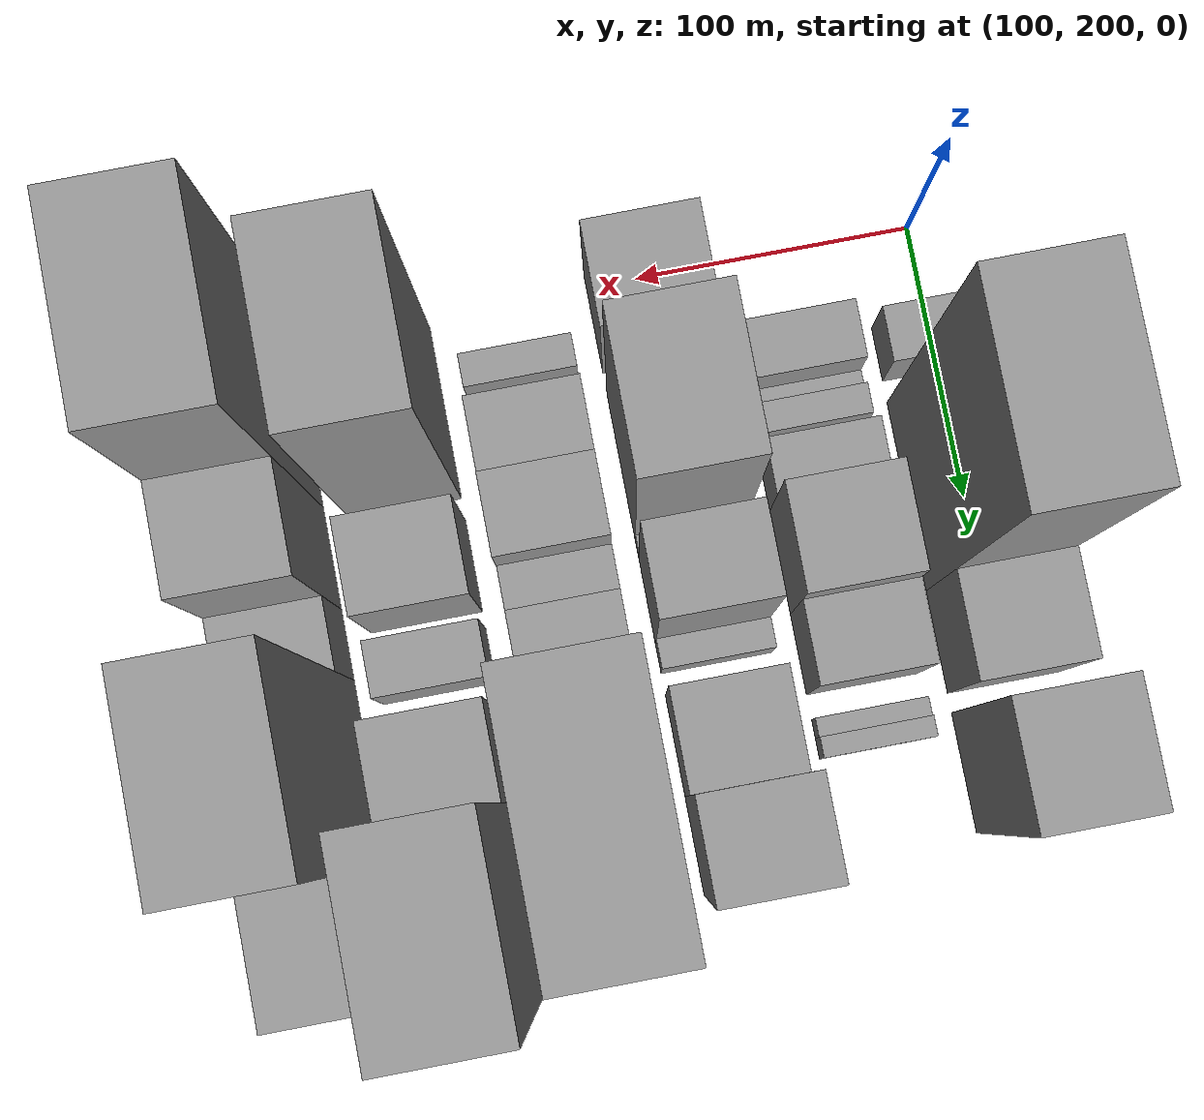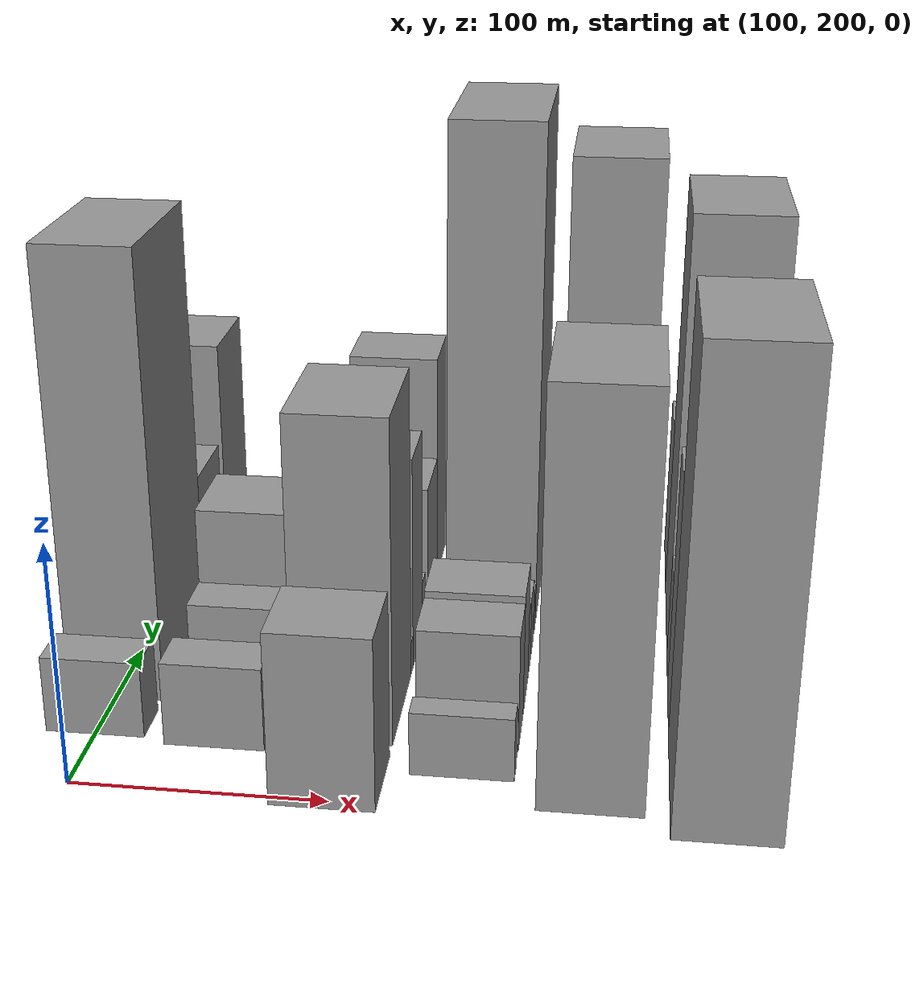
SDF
<sdf version="1.6">
 <world name="default">
  <model name="building_32">
   <static>1</static>
   <pose>100.0000 243.5929 0 0.000000 0.000000 0.000000</pose>
   <link name="link">
    <pose>0 0 16.50 0 0 0</pose>
    <collision name="collision"><geometry><box><size>40.0000 19.6932 33.0000</size></box></geometry></collision>
    <visual name="visual">
     <cast_shadows>0</cast_shadows>
     <geometry><box><size>40.0000 19.6932 33.0000</size></box></geometry>
     <material>
      <script>
       <uri>model://grey_wall/materials/scripts</uri>
       <uri>model://grey_wall/materials/textures</uri>
       <name>vrc/grey_wall</name>
      </script>
     </material>
    </visual>
   </link>
  </model>
  <model name="building_33">
   <static>1</static>
   <pose>100.0000 295.9719 0 0.000000 0.000000 0.000000</pose>
   <link name="link">
    <pose>0 0 96.00 0 0 0</pose>
    <collision name="collision"><geometry><box><size>40.0000 69.0647 192.0000</size></box></geometry></collision>
    <visual name="visual">
     <cast_shadows>0</cast_shadows>
     <geometry><box><size>40.0000 69.0647 192.0000</size></box></geometry>
     <material>
      <script>
       <uri>model://grey_wall/materials/scripts</uri>
       <uri>model://grey_wall/materials/textures</uri>
       <name>vrc/grey_wall</name>
      </script>
     </material>
    </visual>
   </link>
  </model>
  <model name="building_34">
   <static>1</static>
   <pose>100.0000 349.0040 0 0.000000 0.000000 0.000000</pose>
   <link name="link">
    <pose>0 0 34.50 0 0 0</pose>
    <collision name="collision"><geometry><box><size>40.0000 36.9994 69.0000</size></box></geometry></collision>
    <visual name="visual">
     <cast_shadows>0</cast_shadows>
     <geometry><box><size>40.0000 36.9994 69.0000</size></box></geometry>
     <material>
      <script>
       <uri>model://grey_wall/materials/scripts</uri>
       <uri>model://grey_wall/materials/textures</uri>
       <name>vrc/grey_wall</name>
      </script>
     </material>
    </visual>
   </link>
  </model>
  <model name="building_35">
   <static>1</static>
   <pose>100.0000 395.9646 0 0.000000 0.000000 0.000000</pose>
   <link name="link">
    <pose>0 0 57.00 0 0 0</pose>
    <collision name="collision"><geometry><box><size>40.0000 42.9218 114.0000</size></box></geometry></collision>
    <visual name="visual">
     <cast_shadows>0</cast_shadows>
     <geometry><box><size>40.0000 42.9218 114.0000</size></box></geometry>
     <material>
      <script>
       <uri>model://grey_wall/materials/scripts</uri>
       <uri>model://grey_wall/materials/textures</uri>
       <name>vrc/grey_wall</name>
      </script>
     </material>
    </visual>
   </link>
  </model>
  <model name="building_76">
   <static>1</static>
   <pose>149.0000 240.3497 0 0.000000 0.000000 0.000000</pose>
   <link name="link">
    <pose>0 0 18.00 0 0 0</pose>
    <collision name="collision"><geometry><box><size>40.0000 20.6849 36.0000</size></box></geometry></collision>
    <visual name="visual">
     <cast_shadows>0</cast_shadows>
     <geometry><box><size>40.0000 20.6849 36.0000</size></box></geometry>
     <material>
      <script>
       <uri>model://grey_wall/materials/scripts</uri>
       <uri>model://grey_wall/materials/textures</uri>
       <name>vrc/grey_wall</name>
      </script>
     </material>
    </visual>
   </link>
  </model>
  <model name="building_77">
   <static>1</static>
   <pose>149.0000 253.8900 0 0.000000 0.000000 0.000000</pose>
   <link name="link">
    <pose>0 0 7.50 0 0 0</pose>
    <collision name="collision"><geometry><box><size>40.0000 6.3957 15.0000</size></box></geometry></collision>
    <visual name="visual">
     <cast_shadows>0</cast_shadows>
     <geometry><box><size>40.0000 6.3957 15.0000</size></box></geometry>
     <material>
      <script>
       <uri>model://grey_wall/materials/scripts</uri>
       <uri>model://grey_wall/materials/textures</uri>
       <name>vrc/grey_wall</name>
      </script>
     </material>
    </visual>
   </link>
  </model>
  <model name="building_78">
   <static>1</static>
   <pose>149.0000 262.4991 0 0.000000 0.000000 0.000000</pose>
   <link name="link">
    <pose>0 0 12.00 0 0 0</pose>
    <collision name="collision"><geometry><box><size>40.0000 10.8225 24.0000</size></box></geometry></collision>
    <visual name="visual">
     <cast_shadows>0</cast_shadows>
     <geometry><box><size>40.0000 10.8225 24.0000</size></box></geometry>
     <material>
      <script>
       <uri>model://grey_wall/materials/scripts</uri>
       <uri>model://grey_wall/materials/textures</uri>
       <name>vrc/grey_wall</name>
      </script>
     </material>
    </visual>
   </link>
  </model>
  <model name="building_79">
   <static>1</static>
   <pose>149.0000 282.0099 0 0.000000 0.000000 0.000000</pose>
   <link name="link">
    <pose>0 0 19.50 0 0 0</pose>
    <collision name="collision"><geometry><box><size>40.0000 20.1993 39.0000</size></box></geometry></collision>
    <visual name="visual">
     <cast_shadows>0</cast_shadows>
     <geometry><box><size>40.0000 20.1993 39.0000</size></box></geometry>
     <material>
      <script>
       <uri>model://grey_wall/materials/scripts</uri>
       <uri>model://grey_wall/materials/textures</uri>
       <name>vrc/grey_wall</name>
      </script>
     </material>
    </visual>
   </link>
  </model>
  <model name="building_80">
   <static>1</static>
   <pose>149.0000 310.8652 0 0.000000 0.000000 0.000000</pose>
   <link name="link">
    <pose>0 0 36.00 0 0 0</pose>
    <collision name="collision"><geometry><box><size>40.0000 37.5112 72.0000</size></box></geometry></collision>
    <visual name="visual">
     <cast_shadows>0</cast_shadows>
     <geometry><box><size>40.0000 37.5112 72.0000</size></box></geometry>
     <material>
      <script>
       <uri>model://grey_wall/materials/scripts</uri>
       <uri>model://grey_wall/materials/textures</uri>
       <name>vrc/grey_wall</name>
      </script>
     </material>
    </visual>
   </link>
  </model>
  <model name="building_81">
   <static>1</static>
   <pose>149.0000 344.1254 0 0.000000 0.000000 0.000000</pose>
   <link name="link">
    <pose>0 0 27.00 0 0 0</pose>
    <collision name="collision"><geometry><box><size>40.0000 29.0091 54.0000</size></box></geometry></collision>
    <visual name="visual">
     <cast_shadows>0</cast_shadows>
     <geometry><box><size>40.0000 29.0091 54.0000</size></box></geometry>
     <material>
      <script>
       <uri>model://grey_wall/materials/scripts</uri>
       <uri>model://grey_wall/materials/textures</uri>
       <name>vrc/grey_wall</name>
      </script>
     </material>
    </visual>
   </link>
  </model>
  <model name="building_82">
   <static>1</static>
   <pose>149.0000 371.0020 0 0.000000 0.000000 0.000000</pose>
   <link name="link">
    <pose>0 0 7.50 0 0 0</pose>
    <collision name="collision"><geometry><box><size>40.0000 6.7441 15.0000</size></box></geometry></collision>
    <visual name="visual">
     <cast_shadows>0</cast_shadows>
     <geometry><box><size>40.0000 6.7441 15.0000</size></box></geometry>
     <material>
      <script>
       <uri>model://grey_wall/materials/scripts</uri>
       <uri>model://grey_wall/materials/textures</uri>
       <name>vrc/grey_wall</name>
      </script>
     </material>
    </visual>
   </link>
  </model>
  <model name="building_83">
   <static>1</static>
   <pose>149.0000 378.0578 0 0.000000 0.000000 0.000000</pose>
   <link name="link">
    <pose>0 0 9.00 0 0 0</pose>
    <collision name="collision"><geometry><box><size>40.0000 7.3676 18.0000</size></box></geometry></collision>
    <visual name="visual">
     <cast_shadows>0</cast_shadows>
     <geometry><box><size>40.0000 7.3676 18.0000</size></box></geometry>
     <material>
      <script>
       <uri>model://grey_wall/materials/scripts</uri>
       <uri>model://grey_wall/materials/textures</uri>
       <name>vrc/grey_wall</name>
      </script>
     </material>
    </visual>
   </link>
  </model>
  <model name="building_125">
   <static>1</static>
   <pose>198.0000 213.5311 0 0.000000 0.000000 0.000000</pose>
   <link name="link">
    <pose>0 0 36.00 0 0 0</pose>
    <collision name="collision"><geometry><box><size>40.0000 36.0178 72.0000</size></box></geometry></collision>
    <visual name="visual">
     <cast_shadows>0</cast_shadows>
     <geometry><box><size>40.0000 36.0178 72.0000</size></box></geometry>
     <material>
      <script>
       <uri>model://grey_wall/materials/scripts</uri>
       <uri>model://grey_wall/materials/textures</uri>
       <name>vrc/grey_wall</name>
      </script>
     </material>
    </visual>
   </link>
  </model>
  <model name="building_126">
   <static>1</static>
   <pose>198.0000 266.4138 0 0.000000 0.000000 0.000000</pose>
   <link name="link">
    <pose>0 0 69.00 0 0 0</pose>
    <collision name="collision"><geometry><box><size>40.0000 53.7476 138.0000</size></box></geometry></collision>
    <visual name="visual">
     <cast_shadows>0</cast_shadows>
     <geometry><box><size>40.0000 53.7476 138.0000</size></box></geometry>
     <material>
      <script>
       <uri>model://grey_wall/materials/scripts</uri>
       <uri>model://grey_wall/materials/textures</uri>
       <name>vrc/grey_wall</name>
      </script>
     </material>
    </visual>
   </link>
  </model>
  <model name="building_127">
   <static>1</static>
   <pose>198.0000 296.4613 0 0.000000 0.000000 0.000000</pose>
   <link name="link">
    <pose>0 0 7.50 0 0 0</pose>
    <collision name="collision"><geometry><box><size>40.0000 6.3474 15.0000</size></box></geometry></collision>
    <visual name="visual">
     <cast_shadows>0</cast_shadows>
     <geometry><box><size>40.0000 6.3474 15.0000</size></box></geometry>
     <material>
      <script>
       <uri>model://grey_wall/materials/scripts</uri>
       <uri>model://grey_wall/materials/textures</uri>
       <name>vrc/grey_wall</name>
      </script>
     </material>
    </visual>
   </link>
  </model>
  <model name="building_128">
   <static>1</static>
   <pose>198.0000 315.2924 0 0.000000 0.000000 0.000000</pose>
   <link name="link">
    <pose>0 0 48.00 0 0 0</pose>
    <collision name="collision"><geometry><box><size>40.0000 31.3148 96.0000</size></box></geometry></collision>
    <visual name="visual">
     <cast_shadows>0</cast_shadows>
     <geometry><box><size>40.0000 31.3148 96.0000</size></box></geometry>
     <material>
      <script>
       <uri>model://grey_wall/materials/scripts</uri>
       <uri>model://grey_wall/materials/textures</uri>
       <name>vrc/grey_wall</name>
      </script>
     </material>
    </visual>
   </link>
  </model>
  <model name="building_129">
   <static>1</static>
   <pose>198.0000 336.2710 0 0.000000 0.000000 0.000000</pose>
   <link name="link">
    <pose>0 0 12.00 0 0 0</pose>
    <collision name="collision"><geometry><box><size>40.0000 10.6424 24.0000</size></box></geometry></collision>
    <visual name="visual">
     <cast_shadows>0</cast_shadows>
     <geometry><box><size>40.0000 10.6424 24.0000</size></box></geometry>
     <material>
      <script>
       <uri>model://grey_wall/materials/scripts</uri>
       <uri>model://grey_wall/materials/textures</uri>
       <name>vrc/grey_wall</name>
      </script>
     </material>
    </visual>
   </link>
  </model>
  <model name="building_130">
   <static>1</static>
   <pose>198.0000 367.5538 0 0.000000 0.000000 0.000000</pose>
   <link name="link">
    <pose>0 0 30.00 0 0 0</pose>
    <collision name="collision"><geometry><box><size>40.0000 35.9233 60.0000</size></box></geometry></collision>
    <visual name="visual">
     <cast_shadows>0</cast_shadows>
     <geometry><box><size>40.0000 35.9233 60.0000</size></box></geometry>
     <material>
      <script>
       <uri>model://grey_wall/materials/scripts</uri>
       <uri>model://grey_wall/materials/textures</uri>
       <name>vrc/grey_wall</name>
      </script>
     </material>
    </visual>
   </link>
  </model>
  <model name="building_131">
   <static>1</static>
   <pose>198.0000 403.0230 0 0.000000 0.000000 0.000000</pose>
   <link name="link">
    <pose>0 0 54.00 0 0 0</pose>
    <collision name="collision"><geometry><box><size>40.0000 35.0149 108.0000</size></box></geometry></collision>
    <visual name="visual">
     <cast_shadows>0</cast_shadows>
     <geometry><box><size>40.0000 35.0149 108.0000</size></box></geometry>
     <material>
      <script>
       <uri>model://grey_wall/materials/scripts</uri>
       <uri>model://grey_wall/materials/textures</uri>
       <name>vrc/grey_wall</name>
      </script>
     </material>
    </visual>
   </link>
  </model>
  <model name="building_170">
   <static>1</static>
   <pose>247.0000 227.0635 0 0.000000 0.000000 0.000000</pose>
   <link name="link">
    <pose>0 0 13.50 0 0 0</pose>
    <collision name="collision"><geometry><box><size>40.0000 11.9064 27.0000</size></box></geometry></collision>
    <visual name="visual">
     <cast_shadows>0</cast_shadows>
     <geometry><box><size>40.0000 11.9064 27.0000</size></box></geometry>
     <material>
      <script>
       <uri>model://grey_wall/materials/scripts</uri>
       <uri>model://grey_wall/materials/textures</uri>
       <name>vrc/grey_wall</name>
      </script>
     </material>
    </visual>
   </link>
  </model>
  <model name="building_171">
   <static>1</static>
   <pose>247.0000 254.2678 0 0.000000 0.000000 0.000000</pose>
   <link name="link">
    <pose>0 0 25.50 0 0 0</pose>
    <collision name="collision"><geometry><box><size>40.0000 26.5023 51.0000</size></box></geometry></collision>
    <visual name="visual">
     <cast_shadows>0</cast_shadows>
     <geometry><box><size>40.0000 26.5023 51.0000</size></box></geometry>
     <material>
      <script>
       <uri>model://grey_wall/materials/scripts</uri>
       <uri>model://grey_wall/materials/textures</uri>
       <name>vrc/grey_wall</name>
      </script>
     </material>
    </visual>
   </link>
  </model>
  <model name="building_172">
   <static>1</static>
   <pose>247.0000 282.0640 0 0.000000 0.000000 0.000000</pose>
   <link name="link">
    <pose>0 0 27.00 0 0 0</pose>
    <collision name="collision"><geometry><box><size>40.0000 29.0901 54.0000</size></box></geometry></collision>
    <visual name="visual">
     <cast_shadows>0</cast_shadows>
     <geometry><box><size>40.0000 29.0901 54.0000</size></box></geometry>
     <material>
      <script>
       <uri>model://grey_wall/materials/scripts</uri>
       <uri>model://grey_wall/materials/textures</uri>
       <name>vrc/grey_wall</name>
      </script>
     </material>
    </visual>
   </link>
  </model>
  <model name="building_173">
   <static>1</static>
   <pose>247.0000 304.3781 0 0.000000 0.000000 0.000000</pose>
   <link name="link">
    <pose>0 0 15.00 0 0 0</pose>
    <collision name="collision"><geometry><box><size>40.0000 15.5381 30.0000</size></box></geometry></collision>
    <visual name="visual">
     <cast_shadows>0</cast_shadows>
     <geometry><box><size>40.0000 15.5381 30.0000</size></box></geometry>
     <material>
      <script>
       <uri>model://grey_wall/materials/scripts</uri>
       <uri>model://grey_wall/materials/textures</uri>
       <name>vrc/grey_wall</name>
      </script>
     </material>
    </visual>
   </link>
  </model>
  <model name="building_174">
   <static>1</static>
   <pose>247.0000 320.2747 0 0.000000 0.000000 0.000000</pose>
   <link name="link">
    <pose>0 0 15.00 0 0 0</pose>
    <collision name="collision"><geometry><box><size>40.0000 16.2552 30.0000</size></box></geometry></collision>
    <visual name="visual">
     <cast_shadows>0</cast_shadows>
     <geometry><box><size>40.0000 16.2552 30.0000</size></box></geometry>
     <material>
      <script>
       <uri>model://grey_wall/materials/scripts</uri>
       <uri>model://grey_wall/materials/textures</uri>
       <name>vrc/grey_wall</name>
      </script>
     </material>
    </visual>
   </link>
  </model>
  <model name="building_175">
   <static>1</static>
   <pose>247.0000 339.2530 0 0.000000 0.000000 0.000000</pose>
   <link name="link">
    <pose>0 0 10.50 0 0 0</pose>
    <collision name="collision"><geometry><box><size>40.0000 9.7012 21.0000</size></box></geometry></collision>
    <visual name="visual">
     <cast_shadows>0</cast_shadows>
     <geometry><box><size>40.0000 9.7012 21.0000</size></box></geometry>
     <material>
      <script>
       <uri>model://grey_wall/materials/scripts</uri>
       <uri>model://grey_wall/materials/textures</uri>
       <name>vrc/grey_wall</name>
      </script>
     </material>
    </visual>
   </link>
  </model>
  <model name="building_176">
   <static>1</static>
   <pose>247.0000 385.3731 0 0.000000 0.000000 0.000000</pose>
   <link name="link">
    <pose>0 0 112.50 0 0 0</pose>
    <collision name="collision"><geometry><box><size>40.0000 82.5391 225.0000</size></box></geometry></collision>
    <visual name="visual">
     <cast_shadows>0</cast_shadows>
     <geometry><box><size>40.0000 82.5391 225.0000</size></box></geometry>
     <material>
      <script>
       <uri>model://grey_wall/materials/scripts</uri>
       <uri>model://grey_wall/materials/textures</uri>
       <name>vrc/grey_wall</name>
      </script>
     </material>
    </visual>
   </link>
  </model>
  <model name="building_220">
   <static>1</static>
   <pose>296.0000 235.3775 0 0.000000 0.000000 0.000000</pose>
   <link name="link">
    <pose>0 0 84.00 0 0 0</pose>
    <collision name="collision"><geometry><box><size>40.0000 62.8680 168.0000</size></box></geometry></collision>
    <visual name="visual">
     <cast_shadows>0</cast_shadows>
     <geometry><box><size>40.0000 62.8680 168.0000</size></box></geometry>
     <material>
      <script>
       <uri>model://grey_wall/materials/scripts</uri>
       <uri>model://grey_wall/materials/textures</uri>
       <name>vrc/grey_wall</name>
      </script>
     </material>
    </visual>
   </link>
  </model>
  <model name="building_221">
   <static>1</static>
   <pose>296.0000 291.4276 0 0.000000 0.000000 0.000000</pose>
   <link name="link">
    <pose>0 0 31.50 0 0 0</pose>
    <collision name="collision"><geometry><box><size>40.0000 33.2322 63.0000</size></box></geometry></collision>
    <visual name="visual">
     <cast_shadows>0</cast_shadows>
     <geometry><box><size>40.0000 33.2322 63.0000</size></box></geometry>
     <material>
      <script>
       <uri>model://grey_wall/materials/scripts</uri>
       <uri>model://grey_wall/materials/textures</uri>
       <name>vrc/grey_wall</name>
      </script>
     </material>
    </visual>
   </link>
  </model>
  <model name="building_222">
   <static>1</static>
   <pose>296.0000 323.9221 0 0.000000 0.000000 0.000000</pose>
   <link name="link">
    <pose>0 0 19.50 0 0 0</pose>
    <collision name="collision"><geometry><box><size>40.0000 19.7568 39.0000</size></box></geometry></collision>
    <visual name="visual">
     <cast_shadows>0</cast_shadows>
     <geometry><box><size>40.0000 19.7568 39.0000</size></box></geometry>
     <material>
      <script>
       <uri>model://grey_wall/materials/scripts</uri>
       <uri>model://grey_wall/materials/textures</uri>
       <name>vrc/grey_wall</name>
      </script>
     </material>
    </visual>
   </link>
  </model>
  <model name="building_223">
   <static>1</static>
   <pose>296.0000 360.3204 0 0.000000 0.000000 0.000000</pose>
   <link name="link">
    <pose>0 0 48.00 0 0 0</pose>
    <collision name="collision"><geometry><box><size>40.0000 33.0399 96.0000</size></box></geometry></collision>
    <visual name="visual">
     <cast_shadows>0</cast_shadows>
     <geometry><box><size>40.0000 33.0399 96.0000</size></box></geometry>
     <material>
      <script>
       <uri>model://grey_wall/materials/scripts</uri>
       <uri>model://grey_wall/materials/textures</uri>
       <name>vrc/grey_wall</name>
      </script>
     </material>
    </visual>
   </link>
  </model>
  <model name="building_224">
   <static>1</static>
   <pose>296.0000 408.0690 0 0.000000 0.000000 0.000000</pose>
   <link name="link">
    <pose>0 0 102.00 0 0 0</pose>
    <collision name="collision"><geometry><box><size>40.0000 62.4572 204.0000</size></box></geometry></collision>
    <visual name="visual">
     <cast_shadows>0</cast_shadows>
     <geometry><box><size>40.0000 62.4572 204.0000</size></box></geometry>
     <material>
      <script>
       <uri>model://grey_wall/materials/scripts</uri>
       <uri>model://grey_wall/materials/textures</uri>
       <name>vrc/grey_wall</name>
      </script>
     </material>
    </visual>
   </link>
  </model>
  <model name="building_267">
   <static>1</static>
   <pose>345.0000 226.3573 0 0.000000 0.000000 0.000000</pose>
   <link name="link">
    <pose>0 0 94.50 0 0 0</pose>
    <collision name="collision"><geometry><box><size>40.0000 68.2197 189.0000</size></box></geometry></collision>
    <visual name="visual">
     <cast_shadows>0</cast_shadows>
     <geometry><box><size>40.0000 68.2197 189.0000</size></box></geometry>
     <material>
      <script>
       <uri>model://grey_wall/materials/scripts</uri>
       <uri>model://grey_wall/materials/textures</uri>
       <name>vrc/grey_wall</name>
      </script>
     </material>
    </visual>
   </link>
  </model>
  <model name="building_268">
   <static>1</static>
   <pose>345.0000 279.0923 0 0.000000 0.000000 0.000000</pose>
   <link name="link">
    <pose>0 0 54.00 0 0 0</pose>
    <collision name="collision"><geometry><box><size>40.0000 37.2504 108.0000</size></box></geometry></collision>
    <visual name="visual">
     <cast_shadows>0</cast_shadows>
     <geometry><box><size>40.0000 37.2504 108.0000</size></box></geometry>
     <material>
      <script>
       <uri>model://grey_wall/materials/scripts</uri>
       <uri>model://grey_wall/materials/textures</uri>
       <name>vrc/grey_wall</name>
      </script>
     </material>
    </visual>
   </link>
  </model>
  <model name="building_269">
   <static>1</static>
   <pose>345.0000 310.5408 0 0.000000 0.000000 0.000000</pose>
   <link name="link">
    <pose>0 0 24.00 0 0 0</pose>
    <collision name="collision"><geometry><box><size>40.0000 25.6466 48.0000</size></box></geometry></collision>
    <visual name="visual">
     <cast_shadows>0</cast_shadows>
     <geometry><box><size>40.0000 25.6466 48.0000</size></box></geometry>
     <material>
      <script>
       <uri>model://grey_wall/materials/scripts</uri>
       <uri>model://grey_wall/materials/textures</uri>
       <name>vrc/grey_wall</name>
      </script>
     </material>
    </visual>
   </link>
  </model>
  <model name="building_270">
   <static>1</static>
   <pose>345.0000 356.0283 0 0.000000 0.000000 0.000000</pose>
   <link name="link">
    <pose>0 0 97.50 0 0 0</pose>
    <collision name="collision"><geometry><box><size>40.0000 65.3285 195.0000</size></box></geometry></collision>
    <visual name="visual">
     <cast_shadows>0</cast_shadows>
     <geometry><box><size>40.0000 65.3285 195.0000</size></box></geometry>
     <material>
      <script>
       <uri>model://grey_wall/materials/scripts</uri>
       <uri>model://grey_wall/materials/textures</uri>
       <name>vrc/grey_wall</name>
      </script>
     </material>
    </visual>
   </link>
  </model>
  <model name="building_271">
   <static>1</static>
   <pose>345.0000 410.9085 0 0.000000 0.000000 0.000000</pose>
   <link name="link">
    <pose>0 0 37.50 0 0 0</pose>
    <collision name="collision"><geometry><box><size>40.0000 44.4321 75.0000</size></box></geometry></collision>
    <visual name="visual">
     <cast_shadows>0</cast_shadows>
     <geometry><box><size>40.0000 44.4321 75.0000</size></box></geometry>
     <material>
      <script>
       <uri>model://grey_wall/materials/scripts</uri>
       <uri>model://grey_wall/materials/textures</uri>
       <name>vrc/grey_wall</name>
      </script>
     </material>
    </visual>
   </link>
  </model>
 </world>
</sdf>
